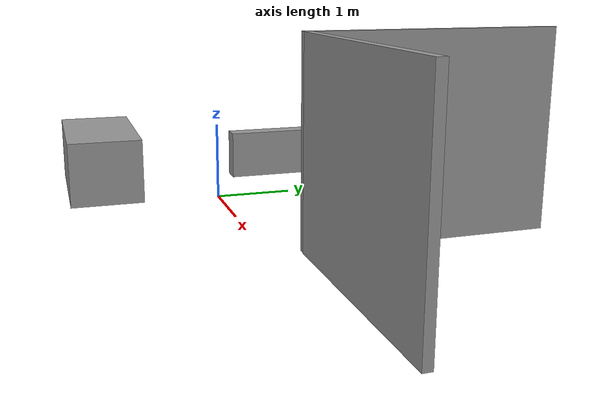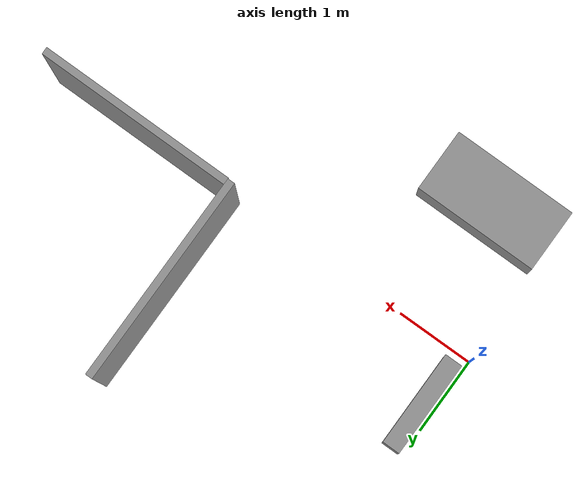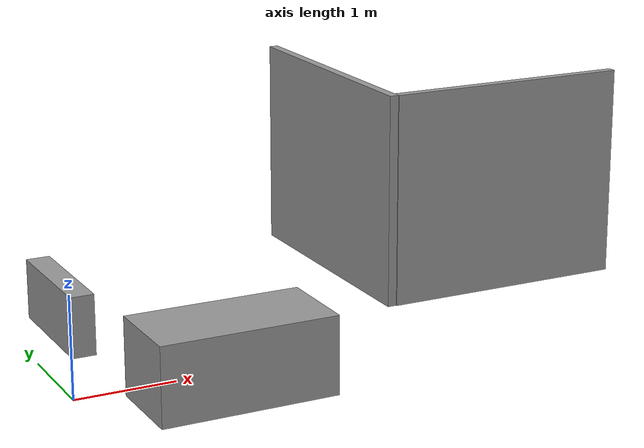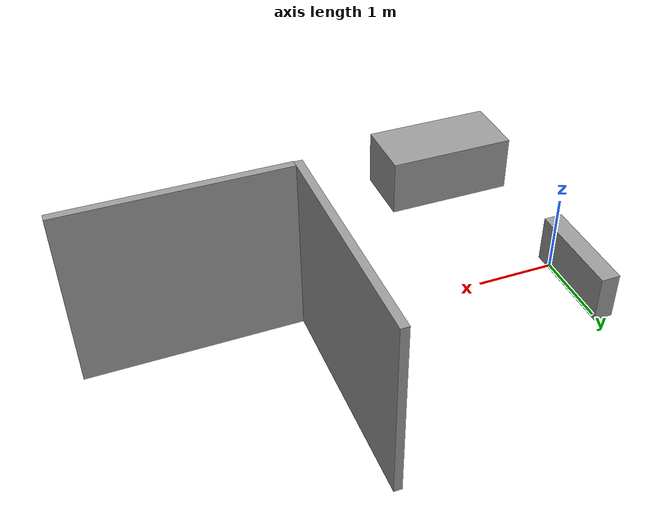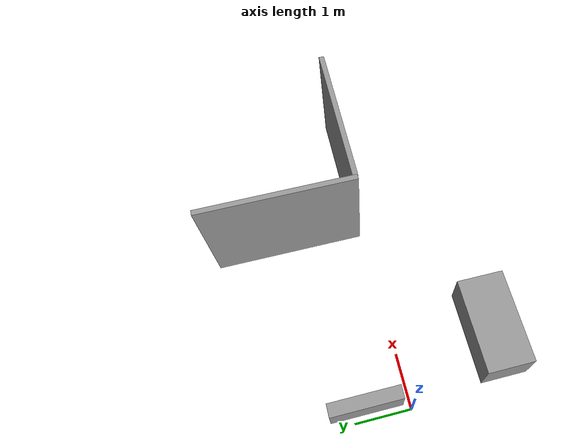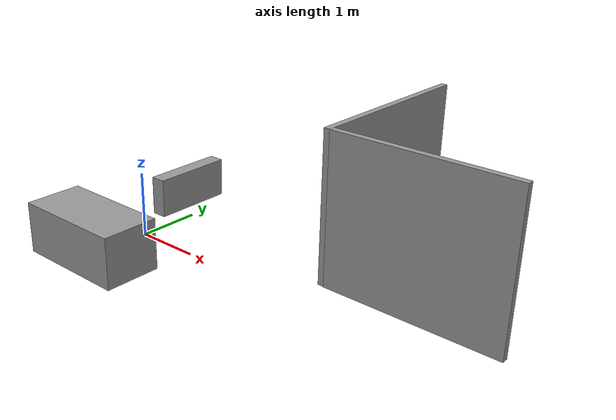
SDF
<?xml version='1.0'?>
<sdf version='1.6'>
  <model name='B75_Objects'>
    <link name='link_1'>
      <inertial>
        <mass>0.512265</mass>
        <inertia>
          <ixx>0.491819</ixx>
          <ixy>0</ixy>
          <ixz>0</ixz>
          <iyy>0.191424</iyy>
          <iyz>0</iyz>
          <izz>0.301106</izz>
        </inertia>
        <pose frame=''>0 0 0 0 -0 0</pose>
      </inertial>
      <pose frame=''>3.32698 1.4145 1.38303 0 -0 0</pose>
      <gravity>1</gravity>
      <self_collide>0</self_collide>
      <kinematic>0</kinematic>
      <enable_wind>0</enable_wind>
      <visual name='visual'>
        <pose frame=''>0 0 0 0 -0 0</pose>
        <geometry>
          <box>
            <size>0.091197 2.65428 2.11001</size>
          </box>
        </geometry>
        <material>
          <lighting>1</lighting>
          <script>
            <uri>file://media/materials/scripts/gazebo.material</uri>
            <name>Gazebo/Grey</name>
          </script>
          <shader type='pixel'>
            <normal_map>__default__</normal_map>
          </shader>
          <ambient>0.3 0.3 0.3 1</ambient>
          <diffuse>0.7 0.7 0.7 1</diffuse>
          <specular>0.01 0.01 0.01 1</specular>
          <emissive>0 0 0 1</emissive>
        </material>
        <transparency>0</transparency>
        <cast_shadows>1</cast_shadows>
      </visual>
      <collision name='collision'>
        <laser_retro>0</laser_retro>
        <max_contacts>10</max_contacts>
        <pose frame=''>0 0 0 0 -0 0</pose>
        <geometry>
          <box>
            <size>0.091197 2.65428 2.11562</size>
          </box>
        </geometry>
        <surface>
          <friction>
            <ode>
              <mu>1</mu>
              <mu2>1</mu2>
              <fdir1>0 0 0</fdir1>
              <slip1>0</slip1>
              <slip2>0</slip2>
            </ode>
            <torsional>
              <coefficient>1</coefficient>
              <patch_radius>0</patch_radius>
              <surface_radius>0</surface_radius>
              <use_patch_radius>1</use_patch_radius>
              <ode>
                <slip>0</slip>
              </ode>
            </torsional>
          </friction>
          <bounce>
            <restitution_coefficient>0</restitution_coefficient>
            <threshold>1e+06</threshold>
          </bounce>
          <contact>
            <collide_without_contact>0</collide_without_contact>
            <collide_without_contact_bitmask>1</collide_without_contact_bitmask>
            <collide_bitmask>1</collide_bitmask>
            <ode>
              <soft_cfm>0</soft_cfm>
              <soft_erp>0.2</soft_erp>
              <kp>1e+13</kp>
              <kd>1</kd>
              <max_vel>0.01</max_vel>
              <min_depth>0</min_depth>
            </ode>
            <bullet>
              <split_impulse>1</split_impulse>
              <split_impulse_penetration_threshold>-0.01</split_impulse_penetration_threshold>
              <soft_cfm>0</soft_cfm>
              <soft_erp>0.2</soft_erp>
              <kp>1e+13</kp>
              <kd>1</kd>
            </bullet>
          </contact>
        </surface>
      </collision>
    </link>
    <link name='link_2'>
      <inertial>
        <mass>0.468337</mass>
        <inertia>
          <ixx>0.173142</ixx>
          <ixy>0</ixy>
          <ixz>0</ixz>
          <iyy>0.413506</iyy>
          <iyz>0</iyz>
          <izz>0.240991</izz>
        </inertia>
        <pose frame=''>0 0 0 0 -0 0</pose>
      </inertial>
      <pose frame=''>4.6132 0.122662 1.38303 0 -0 0</pose>
      <gravity>1</gravity>
      <self_collide>0</self_collide>
      <kinematic>0</kinematic>
      <enable_wind>0</enable_wind>
      <visual name='visual'>
        <pose frame=''>0 0 0 0 -0 0</pose>
        <geometry>
          <box>
            <size>2.4833 0.089668 2.11</size>
          </box>
        </geometry>
        <material>
          <lighting>1</lighting>
          <script>
            <uri>file://media/materials/scripts/gazebo.material</uri>
            <name>Gazebo/Grey</name>
          </script>
          <shader type='pixel'>
            <normal_map>__default__</normal_map>
          </shader>
          <ambient>0.3 0.3 0.3 1</ambient>
          <diffuse>0.7 0.7 0.7 1</diffuse>
          <specular>0.01 0.01 0.01 1</specular>
          <emissive>0 0 0 1</emissive>
        </material>
        <transparency>0</transparency>
        <cast_shadows>1</cast_shadows>
      </visual>
      <collision name='collision'>
        <laser_retro>0</laser_retro>
        <max_contacts>10</max_contacts>
        <pose frame=''>0 0 0 0 -0 0</pose>
        <geometry>
          <box>
            <size>2.4833 0.089668 2.10436</size>
          </box>
        </geometry>
        <surface>
          <friction>
            <ode>
              <mu>1</mu>
              <mu2>1</mu2>
              <fdir1>0 0 0</fdir1>
              <slip1>0</slip1>
              <slip2>0</slip2>
            </ode>
            <torsional>
              <coefficient>1</coefficient>
              <patch_radius>0</patch_radius>
              <surface_radius>0</surface_radius>
              <use_patch_radius>1</use_patch_radius>
              <ode>
                <slip>0</slip>
              </ode>
            </torsional>
          </friction>
          <bounce>
            <restitution_coefficient>0</restitution_coefficient>
            <threshold>1e+06</threshold>
          </bounce>
          <contact>
            <collide_without_contact>0</collide_without_contact>
            <collide_without_contact_bitmask>1</collide_without_contact_bitmask>
            <collide_bitmask>1</collide_bitmask>
            <ode>
              <soft_cfm>0</soft_cfm>
              <soft_erp>0.2</soft_erp>
              <kp>1e+13</kp>
              <kd>1</kd>
              <max_vel>0.01</max_vel>
              <min_depth>0</min_depth>
            </ode>
            <bullet>
              <split_impulse>1</split_impulse>
              <split_impulse_penetration_threshold>-0.01</split_impulse_penetration_threshold>
              <soft_cfm>0</soft_cfm>
              <soft_erp>0.2</soft_erp>
              <kp>1e+13</kp>
              <kd>1</kd>
            </bullet>
          </contact>
        </surface>
      </collision>
    </link>
    <link name='link_3'>
      <inertial>
        <mass>0.133825</mass>
        <inertia>
          <ixx>0.0148882</ixx>
          <ixy>0</ixy>
          <ixz>0</ixz>
          <iyy>0.00433232</iyy>
          <iyz>0</iyz>
          <izz>0.0117483</izz>
        </inertia>
        <pose frame=''>0 0 0 0 -0 0</pose>
      </inertial>
      <pose frame=''>0.17373 0.768579 0.625903 0 -0 0</pose>
      <gravity>1</gravity>
      <self_collide>0</self_collide>
      <kinematic>0</kinematic>
      <enable_wind>0</enable_wind>
      <visual name='visual'>
        <pose frame=''>0 0 0 0 -0 0</pose>
        <geometry>
          <box>
            <size>0.23 1.24 0.585</size>
          </box>
        </geometry>
        <material>
          <lighting>1</lighting>
          <script>
            <uri>file://media/materials/scripts/gazebo.material</uri>
            <name>Gazebo/Grey</name>
          </script>
          <shader type='pixel'>
            <normal_map>__default__</normal_map>
          </shader>
          <ambient>0.3 0.3 0.3 1</ambient>
          <diffuse>0.7 0.7 0.7 1</diffuse>
          <specular>0.01 0.01 0.01 1</specular>
          <emissive>0 0 0 1</emissive>
        </material>
        <transparency>0</transparency>
        <cast_shadows>1</cast_shadows>
      </visual>
      <collision name='collision'>
        <laser_retro>0</laser_retro>
        <max_contacts>10</max_contacts>
        <pose frame=''>0 0 0 0 -0 0</pose>
        <geometry>
          <box>
            <size>0.23 1.24 0.585</size>
          </box>
        </geometry>
        <surface>
          <friction>
            <ode>
              <mu>1</mu>
              <mu2>1</mu2>
              <fdir1>0 0 0</fdir1>
              <slip1>0</slip1>
              <slip2>0</slip2>
            </ode>
            <torsional>
              <coefficient>1</coefficient>
              <patch_radius>0</patch_radius>
              <surface_radius>0</surface_radius>
              <use_patch_radius>1</use_patch_radius>
              <ode>
                <slip>0</slip>
              </ode>
            </torsional>
          </friction>
          <bounce>
            <restitution_coefficient>0</restitution_coefficient>
            <threshold>1e+06</threshold>
          </bounce>
          <contact>
            <collide_without_contact>0</collide_without_contact>
            <collide_without_contact_bitmask>1</collide_without_contact_bitmask>
            <collide_bitmask>1</collide_bitmask>
            <ode>
              <soft_cfm>0</soft_cfm>
              <soft_erp>0.2</soft_erp>
              <kp>1e+13</kp>
              <kd>1</kd>
              <max_vel>0.01</max_vel>
              <min_depth>0</min_depth>
            </ode>
            <bullet>
              <split_impulse>1</split_impulse>
              <split_impulse_penetration_threshold>-0.01</split_impulse_penetration_threshold>
              <soft_cfm>0</soft_cfm>
              <soft_erp>0.2</soft_erp>
              <kp>1e+13</kp>
              <kd>1</kd>
            </bullet>
          </contact>
        </surface>
      </collision>
    </link>
    <link name='link_4'>
      <inertial>
        <mass>1</mass>
        <inertia>
          <ixx>0.166667</ixx>
          <ixy>0</ixy>
          <ixz>0</ixz>
          <iyy>0.166667</iyy>
          <iyz>0</iyz>
          <izz>0.166667</izz>
        </inertia>
        <pose frame=''>0 0 0 0 -0 0</pose>
      </inertial>
      <pose frame=''>0.85855 -1.60142 0.828032 0 -0 0</pose>
      <gravity>1</gravity>
      <self_collide>0</self_collide>
      <kinematic>0</kinematic>
      <enable_wind>0</enable_wind>
      <visual name='visual'>
        <pose frame=''>0 0 0 0 -0 0</pose>
        <geometry>
          <box>
            <size>1.6 0.8 0.71</size>
          </box>
        </geometry>
        <material>
          <lighting>1</lighting>
          <script>
            <uri>file://media/materials/scripts/gazebo.material</uri>
            <name>Gazebo/Grey</name>
          </script>
          <shader type='pixel'>
            <normal_map>__default__</normal_map>
          </shader>
          <ambient>0.3 0.3 0.3 1</ambient>
          <diffuse>0.7 0.7 0.7 1</diffuse>
          <specular>0.01 0.01 0.01 1</specular>
          <emissive>0 0 0 1</emissive>
        </material>
        <transparency>0</transparency>
        <cast_shadows>1</cast_shadows>
      </visual>
      <collision name='collision'>
        <laser_retro>0</laser_retro>
        <max_contacts>10</max_contacts>
        <pose frame=''>0 0 0 0 -0 0</pose>
        <geometry>
          <box>
            <size>1.6 0.8 0.71</size>
          </box>
        </geometry>
        <surface>
          <friction>
            <ode>
              <mu>1</mu>
              <mu2>1</mu2>
              <fdir1>0 0 0</fdir1>
              <slip1>0</slip1>
              <slip2>0</slip2>
            </ode>
            <torsional>
              <coefficient>1</coefficient>
              <patch_radius>0</patch_radius>
              <surface_radius>0</surface_radius>
              <use_patch_radius>1</use_patch_radius>
              <ode>
                <slip>0</slip>
              </ode>
            </torsional>
          </friction>
          <bounce>
            <restitution_coefficient>0</restitution_coefficient>
            <threshold>1e+06</threshold>
          </bounce>
          <contact>
            <collide_without_contact>0</collide_without_contact>
            <collide_without_contact_bitmask>1</collide_without_contact_bitmask>
            <collide_bitmask>1</collide_bitmask>
            <ode>
              <soft_cfm>0</soft_cfm>
              <soft_erp>0.2</soft_erp>
              <kp>1e+13</kp>
              <kd>1</kd>
              <max_vel>0.01</max_vel>
              <min_depth>0</min_depth>
            </ode>
            <bullet>
              <split_impulse>1</split_impulse>
              <split_impulse_penetration_threshold>-0.01</split_impulse_penetration_threshold>
              <soft_cfm>0</soft_cfm>
              <soft_erp>0.2</soft_erp>
              <kp>1e+13</kp>
              <kd>1</kd>
            </bullet>
          </contact>
        </surface>
      </collision>
    </link>
    <static>0</static>
    <allow_auto_disable>1</allow_auto_disable>
  </model>
</sdf>
